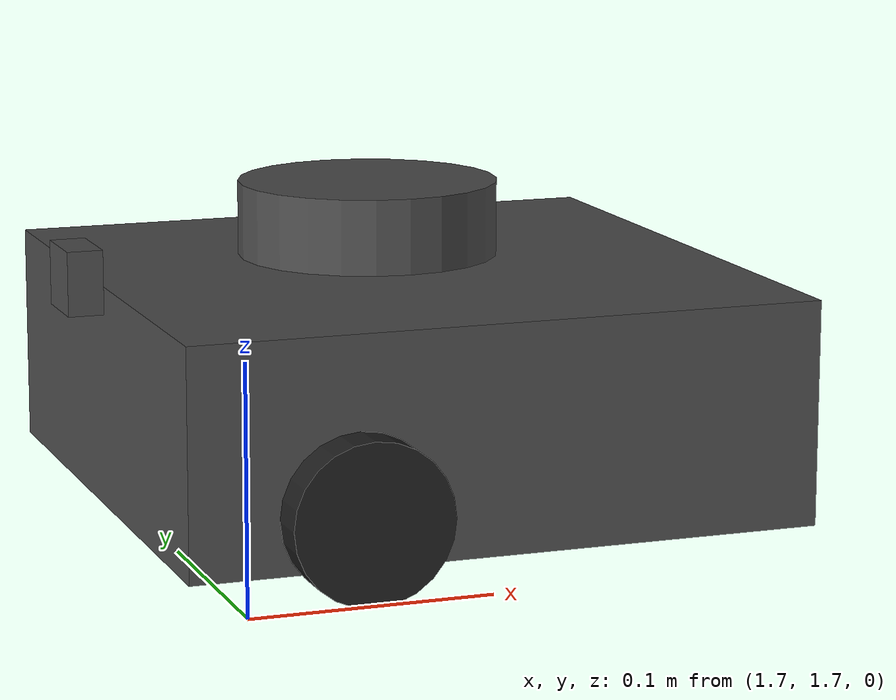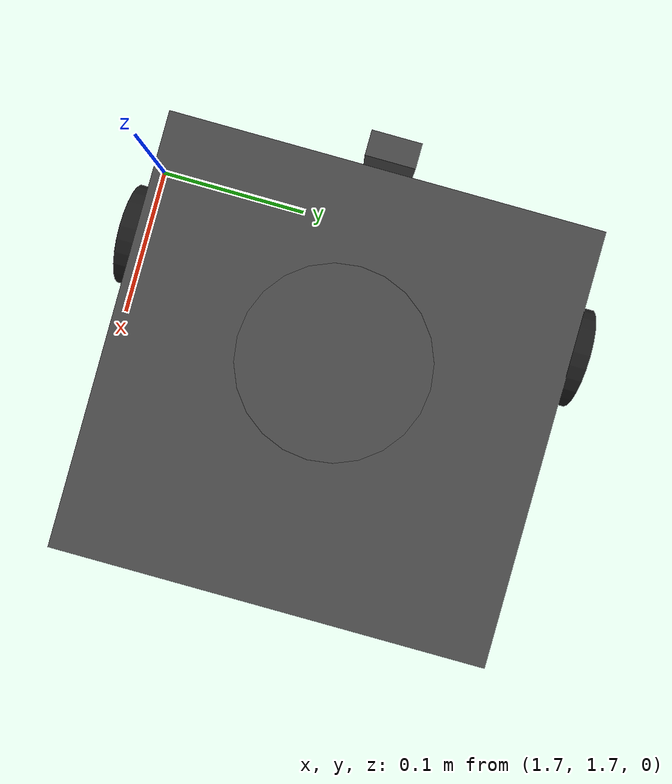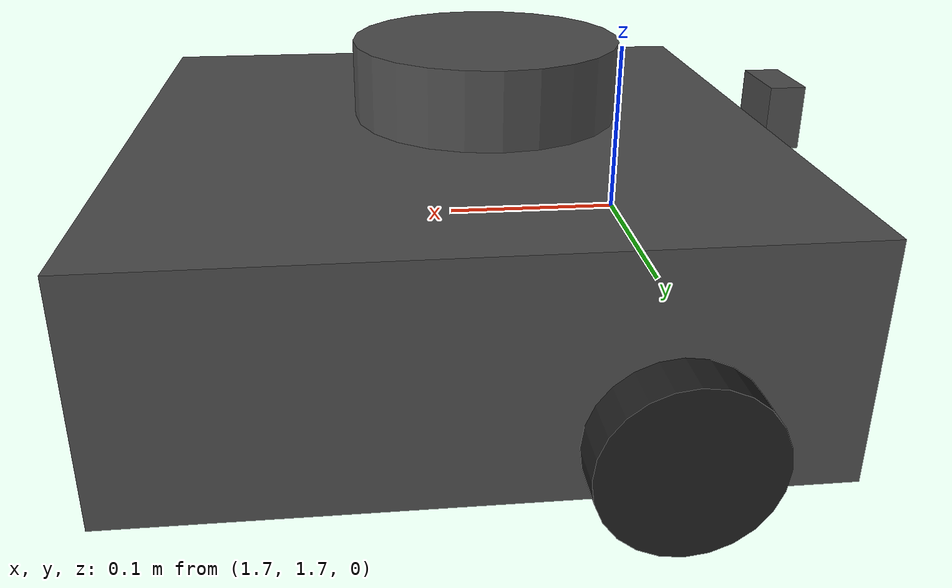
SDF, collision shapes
<?xml version='1.0'?>
<sdf version='1.7'>
  <model name='waffle_pi'>
    <link name='base_footprint'>
      <inertial>
        <pose>-0.006056 0 0.019264 0 -0 0</pose>
        <mass>1.49691</mass>
        <inertia>
          <ixx>0.0133097</ixx>
          <ixy>-4.75766e-05</ixy>
          <ixz>0.000910646</ixz>
          <iyy>0.0139133</iyy>
          <iyz>-3.54223e-06</iyz>
          <izz>0.018379</izz>
        </inertia>
      </inertial>
      <collision name='base_footprint_fixed_joint_lump__base_link_collision'>
        <pose>-0.064 0 0.057 0 -0 0</pose>
        <geometry>
          <box>
            <size>0.266 0.266 0.094</size>
          </box>
        </geometry>
        <surface>
          <contact>
            <ode/>
          </contact>
          <friction>
            <ode/>
            <torsional>
              <ode/>
            </torsional>
          </friction>
          <bounce/>
        </surface>
        <max_contacts>10</max_contacts>
      </collision>
      <collision name='base_footprint_fixed_joint_lump__camera_link_collision_1'>
        <pose>0.078 0 0.107 0 -0 0</pose>
        <geometry>
          <box>
            <size>0.015 0.03 0.027</size>
          </box>
        </geometry>
        <max_contacts>10</max_contacts>
        <surface>
          <contact>
            <ode/>
          </contact>
          <bounce/>
          <friction>
            <torsional>
              <ode/>
            </torsional>
            <ode/>
          </friction>
        </surface>
      </collision>
      <collision name='base_footprint_fixed_joint_lump__caster_back_left_link_collision_2'>
        <pose>-0.177 0.064001 0.005 -1.57 0 0</pose>
        <geometry>
          <box>
            <size>0.03 0.009 0.02</size>
          </box>
        </geometry>
        <surface>
          <contact>
            <ode>
              <kp>1e+06</kp>
              <kd>100</kd>
              <max_vel>1</max_vel>
              <min_depth>0.001</min_depth>
            </ode>
          </contact>
          <friction>
            <ode>
              <mu>0.1</mu>
              <mu2>0.1</mu2>
            </ode>
            <torsional>
              <ode/>
            </torsional>
          </friction>
          <bounce/>
        </surface>
        <max_contacts>10</max_contacts>
      </collision>
      <collision name='base_footprint_fixed_joint_lump__caster_back_right_link_collision_3'>
        <pose>-0.177 -0.063999 0.005 -1.57 0 0</pose>
        <geometry>
          <box>
            <size>0.03 0.009 0.02</size>
          </box>
        </geometry>
        <surface>
          <contact>
            <ode>
              <kp>1e+06</kp>
              <kd>100</kd>
              <max_vel>1</max_vel>
              <min_depth>0.001</min_depth>
            </ode>
          </contact>
          <friction>
            <ode>
              <mu>0.1</mu>
              <mu2>0.1</mu2>
            </ode>
            <torsional>
              <ode/>
            </torsional>
          </friction>
          <bounce/>
        </surface>
        <max_contacts>10</max_contacts>
      </collision>
      <collision name='base_footprint_fixed_joint_lump__base_scan_collision_4'>
        <pose>-0.049 0 0.1255 0 -0 0</pose>
        <geometry>
          <cylinder>
            <length>0.0315</length>
            <radius>0.055</radius>
          </cylinder>
        </geometry>
        <surface>
          <contact>
            <ode/>
          </contact>
          <friction>
            <ode/>
            <torsional>
              <ode/>
            </torsional>
          </friction>
          <bounce/>
        </surface>
        <max_contacts>10</max_contacts>
      </collision>
      <visual name='base_footprint_fixed_joint_lump__base_link_visual'>
        <cast_shadows>0</cast_shadows>
        <pose>-0.064 0 0.01 0 -0 0</pose>
        <geometry>
          <mesh>
            <scale>0.001 0.001 0.001</scale>
            <uri>model://turtlebot/meshes/bases/waffle_pi_base.stl</uri>
          </mesh>
        </geometry>
        <material>
          <script>
            <name>Gazebo/DarkGrey</name>
            <uri>file://media/materials/scripts/gazebo.material</uri>
          </script>
        </material>
      </visual>
      <visual name='base_footprint_fixed_joint_lump__base_scan_visual_1'>
        <cast_shadows>0</cast_shadows>
        <pose>-0.064 0 0.132 0 -0 0</pose>
        <geometry>
          <mesh>
            <scale>0.001 0.001 0.001</scale>
            <uri>model://turtlebot/meshes/sensors/lds.stl</uri>
          </mesh>
        </geometry>
        <material>
          <script>
            <name>Gazebo/FlatBlack</name>
            <uri>file://media/materials/scripts/gazebo.material</uri>
          </script>
        </material>
      </visual>
      <velocity_decay/>
      <velocity_decay/>
      <sensor name='Pi Camera' type='camera'>
        <always_on>1</always_on>
        <visualize>0</visualize>
        <camera>
          <horizontal_fov>1.0856</horizontal_fov>
          <image>
            <width>640</width>
            <height>480</height>
            <format>R8G8B8</format>
          </image>
          <clip>
            <near>0.03</near>
            <far>100</far>
          </clip>
        </camera>
        <plugin name='camera_controller' filename='libgazebo_ros_camera.so'>
          <alwaysOn>1</alwaysOn>
          <updateRate>30.0</updateRate>
          <cameraName>camera</cameraName>
          <frameName>camera_rgb_optical_frame</frameName>
          <imageTopicName>rgb/image_raw</imageTopicName>
          <cameraInfoTopicName>rgb/camera_info</cameraInfoTopicName>
          <hackBaseline>0.07</hackBaseline>
          <distortionK1>0.0</distortionK1>
          <distortionK2>0.0</distortionK2>
          <distortionK3>0.0</distortionK3>
          <distortionT1>0.0</distortionT1>
          <distortionT2>0.0</distortionT2>
          <robotNamespace>/</robotNamespace>
        </plugin>
        <pose>0.076 0 0.103 0 -0 0</pose>
      </sensor>
      <velocity_decay/>
      <velocity_decay/>
      <velocity_decay/>
      <sensor name='imu' type='imu'>
        <always_on>1</always_on>
        <visualize>0</visualize>
        <pose>0 0 0.078 0 -0 0</pose>
        <imu/>
      </sensor>
      <gravity>1</gravity>
      <velocity_decay/>
      <sensor name='lds_lfcd_sensor' type='ray'>
        <visualize>0</visualize>
        <update_rate>5</update_rate>
        <ray>
          <scan>
            <horizontal>
              <samples>360</samples>
              <resolution>1</resolution>
              <min_angle>0</min_angle>
              <max_angle>6.28319</max_angle>
            </horizontal>
            <vertical>
              <samples>1</samples>
              <min_angle>0</min_angle>
              <max_angle>0</max_angle>
            </vertical>
          </scan>
          <range>
            <min>0.12</min>
            <max>3.5</max>
            <resolution>0.015</resolution>
          </range>
          <noise>
            <type>gaussian</type>
            <mean>0</mean>
            <stddev>0.01</stddev>
          </noise>
        </ray>
        <plugin name='gazebo_ros_lds_lfcd_controller' filename='libgazebo_ros_laser.so'>
          <topicName>scan</topicName>
          <frameName>base_scan</frameName>
          <robotNamespace>/</robotNamespace>
        </plugin>
        <pose>-0.064 0 0.132 0 -0 0</pose>
      </sensor>
      <self_collide>0</self_collide>
      <enable_wind>0</enable_wind>
      <kinematic>0</kinematic>
    </link>
    <joint name='wheel_left_joint' type='revolute'>
      <pose relative_to='base_footprint'>0 0.144 0.033 -1.57 0 0</pose>
      <parent>base_footprint</parent>
      <child>wheel_left_link</child>
      <axis>
        <xyz>0 0 1</xyz>
        <limit>
          <lower>-1e+16</lower>
          <upper>1e+16</upper>
        </limit>
        <dynamics>
          <spring_reference>0</spring_reference>
          <spring_stiffness>0</spring_stiffness>
        </dynamics>
      </axis>
    </joint>
    <link name='wheel_left_link'>
      <pose relative_to='wheel_left_joint'>0 0 0 0 -0 0</pose>
      <inertial>
        <pose>0 0 0 0 -0 0</pose>
        <mass>0.0284989</mass>
        <inertia>
          <ixx>1.11756e-05</ixx>
          <ixy>-4.23698e-11</ixy>
          <ixz>-5.93817e-09</ixz>
          <iyy>1.11924e-05</iyy>
          <iyz>-1.44001e-11</iyz>
          <izz>2.07126e-05</izz>
        </inertia>
      </inertial>
      <collision name='wheel_left_link_collision'>
        <pose>0 0 0 0 -0 0</pose>
        <geometry>
          <cylinder>
            <length>0.018</length>
            <radius>0.033</radius>
          </cylinder>
        </geometry>
        <surface>
          <contact>
            <ode>
              <kp>500000</kp>
              <kd>10</kd>
              <max_vel>0.1</max_vel>
              <min_depth>0.001</min_depth>
            </ode>
          </contact>
          <friction>
            <ode>
              <mu>0.1</mu>
              <mu2>0.1</mu2>
              <fdir1>1 0 0</fdir1>
            </ode>
            <torsional>
              <ode/>
            </torsional>
          </friction>
          <bounce/>
        </surface>
        <max_contacts>10</max_contacts>
      </collision>
      <visual name='wheel_left_link_visual'>
        <cast_shadows>0</cast_shadows>
        <pose>0 0 0 1.57 -0 0</pose>
        <geometry>
          <mesh>
            <scale>0.001 0.001 0.001</scale>
            <uri>model://turtlebot/meshes/wheels/left_tire.stl</uri>
          </mesh>
        </geometry>
        <material>
          <script>
            <name>Gazebo/FlatBlack</name>
            <uri>file://media/materials/scripts/gazebo.material</uri>
          </script>
        </material>
      </visual>
      <gravity>1</gravity>
      <velocity_decay/>
      <self_collide>0</self_collide>
      <enable_wind>0</enable_wind>
      <kinematic>0</kinematic>
    </link>
    <joint name='wheel_right_joint' type='revolute'>
      <pose relative_to='base_footprint'>0 -0.144 0.033 -1.57 0 0</pose>
      <parent>base_footprint</parent>
      <child>wheel_right_link</child>
      <axis>
        <xyz>0 0 1</xyz>
        <limit>
          <lower>-1e+16</lower>
          <upper>1e+16</upper>
        </limit>
        <dynamics>
          <spring_reference>0</spring_reference>
          <spring_stiffness>0</spring_stiffness>
        </dynamics>
      </axis>
    </joint>
    <link name='wheel_right_link'>
      <pose relative_to='wheel_right_joint'>0 0 0 0 -0 0</pose>
      <inertial>
        <pose>0 0 0 0 -0 0</pose>
        <mass>0.0284989</mass>
        <inertia>
          <ixx>1.11756e-05</ixx>
          <ixy>-4.23698e-11</ixy>
          <ixz>-5.93817e-09</ixz>
          <iyy>1.11924e-05</iyy>
          <iyz>-1.44001e-11</iyz>
          <izz>2.07126e-05</izz>
        </inertia>
      </inertial>
      <collision name='wheel_right_link_collision'>
        <pose>0 0 0 0 -0 0</pose>
        <geometry>
          <cylinder>
            <length>0.018</length>
            <radius>0.033</radius>
          </cylinder>
        </geometry>
        <surface>
          <contact>
            <ode>
              <kp>500000</kp>
              <kd>10</kd>
              <max_vel>0.1</max_vel>
              <min_depth>0.001</min_depth>
            </ode>
          </contact>
          <friction>
            <ode>
              <mu>0.1</mu>
              <mu2>0.1</mu2>
              <fdir1>1 0 0</fdir1>
            </ode>
            <torsional>
              <ode/>
            </torsional>
          </friction>
          <bounce/>
        </surface>
        <max_contacts>10</max_contacts>
      </collision>
      <visual name='wheel_right_link_visual'>
        <cast_shadows>0</cast_shadows>
        <pose>0 0 0 1.57 -0 0</pose>
        <geometry>
          <mesh>
            <scale>0.001 0.001 0.001</scale>
            <uri>model://turtlebot/meshes/wheels/right_tire.stl</uri>
          </mesh>
        </geometry>
        <material>
          <script>
            <name>Gazebo/FlatBlack</name>
            <uri>file://media/materials/scripts/gazebo.material</uri>
          </script>
        </material>
      </visual>
      <gravity>1</gravity>
      <velocity_decay/>
      <self_collide>0</self_collide>
      <enable_wind>0</enable_wind>
      <kinematic>0</kinematic>
    </link>
    <plugin name='turtlebot3_waffle_pi_controller' filename='libgazebo_ros_diff_drive.so'>
      <commandTopic>cmd_vel</commandTopic>
      <odometryTopic>odom</odometryTopic>
      <odometryFrame>odom</odometryFrame>
      <odometrySource>world</odometrySource>
      <publishOdomTF>1</publishOdomTF>
      <robotBaseFrame>base_footprint</robotBaseFrame>
      <publishWheelTF>0</publishWheelTF>
      <publishTf>1</publishTf>
      <publishWheelJointState>1</publishWheelJointState>
      <legacyMode>0</legacyMode>
      <updateRate>30</updateRate>
      <leftJoint>wheel_left_joint</leftJoint>
      <rightJoint>wheel_right_joint</rightJoint>
      <wheelSeparation>0.287</wheelSeparation>
      <wheelDiameter>0.066</wheelDiameter>
      <wheelAcceleration>1</wheelAcceleration>
      <wheelTorque>10</wheelTorque>
      <rosDebugLevel>na</rosDebugLevel>
      <robotNamespace>/</robotNamespace>
    </plugin>
    <static>0</static>
    <plugin name='imu_plugin' filename='libgazebo_ros_imu.so'>
      <alwaysOn>1</alwaysOn>
      <topicName>imu</topicName>
      <serviceName>imu_service</serviceName>
      <gaussianNoise>0.0</gaussianNoise>
      <updateRate>0</updateRate>
      <imu>
        <noise>
          <type>gaussian</type>
          <rate>
            <mean>0.0</mean>
            <stddev>2e-4</stddev>
            <bias_mean>0.0000075</bias_mean>
            <bias_stddev>0.0000008</bias_stddev>
          </rate>
          <accel>
            <mean>0.0</mean>
            <stddev>1.7e-2</stddev>
            <bias_mean>0.1</bias_mean>
            <bias_stddev>0.001</bias_stddev>
          </accel>
        </noise>
      </imu>
      <robotNamespace>/</robotNamespace>
      <bodyName>base_footprint</bodyName>
      <frameName>base_footprint</frameName>
      <xyzOffset>0 0 -0.156</xyzOffset>
      <rpyOffset>0 -0 0</rpyOffset>
    </plugin>
    <pose>1.75 1.85 0 0 0 -3.13819</pose>
  </model>
</sdf>
